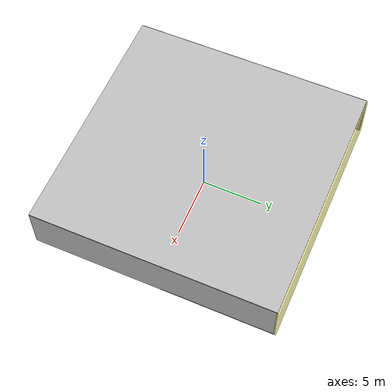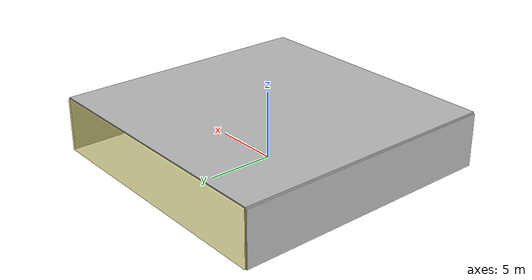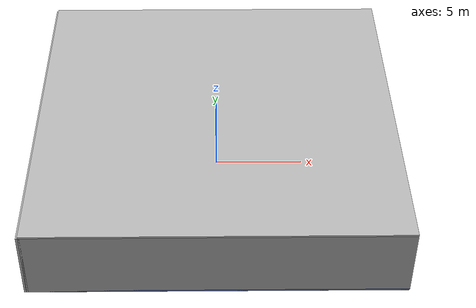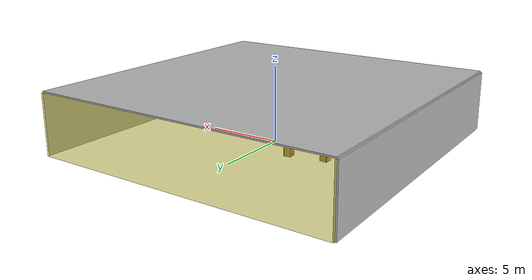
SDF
<sdf version="1.4">
 <world name="default">
  <physics type="ode">
   <max_step_size>0.001</max_step_size>
   <real_time_factor>1</real_time_factor>
   <real_time_update_rate>1000</real_time_update_rate>
   <gravity>0 0 -9.8</gravity>
  </physics>
  <scene><ambient>0.4 0.4 0.4 1</ambient><background>0.7 0.7 0.7 1</background><shadows>1</shadows></scene>
  <model name="Surrounding">
   <static>1</static>
   <link name="Ceiling">
    <collision name="Ceiling_Collision"><geometry><box><size>20 20 0.1</size></box></geometry></collision>
    <visual name="Ceiling_Visual">
     <geometry><box><size>20 20 0.1</size></box></geometry>
     <material>
      <script><uri>file://media/materials/scripts/gazebo.material</uri><name>Gazebo/Pioneer2Body</name></script>
     </material>
    </visual>
    <pose>0 0 4.05 0 0 0</pose>
   </link>
   <link name="Wall_South">
    <collision name="Wall_South_Collision">
     <geometry><box><size>20 0 4</size></box></geometry>
     <pose>0 0 2 0 -0 0</pose>
    </collision>
    <visual name="Wall_South_Visual">
     <pose>0 0 2 0 -0 0</pose>
     <geometry><box><size>20 0 4</size></box></geometry>
     <material>
      <script><uri>file://media/materials/scripts/gazebo.material</uri><name>Gazebo/Grey</name></script>
     </material>
    </visual>
    <velocity_decay><linear>0</linear><angular>0</angular></velocity_decay>
    <pose>0 -10 0 0 -0 0</pose>
   </link>
   <link name="Wall_East">
    <collision name="Wall_21_Collision">
     <geometry><box><size>20 0 4</size></box></geometry>
     <pose>0 0 2 0 -0 0</pose>
    </collision>
    <visual name="Wall_21_Visual">
     <pose>0 0 2 0 -0 0</pose>
     <geometry><box><size>20 0 4</size></box></geometry>
     <material>
      <script><uri>file://media/materials/scripts/gazebo.material</uri><name>Gazebo/LightOn</name></script>
     </material>
    </visual>
    <velocity_decay><linear>0</linear><angular>0</angular></velocity_decay>
    <pose>10 0 0 0 -0 1.5708</pose>
   </link>
   <link name="Wall_North">
    <collision name="Wall_22_Collision">
     <geometry><box><size>20 0.2 4</size></box></geometry>
     <pose>0 0 2 0 -0 0</pose>
    </collision>
    <visual name="Wall_22_Visual">
     <pose>0 0 2 0 -0 0</pose>
     <geometry><box><size>20 0.2 4</size></box></geometry>
     <material>
      <script>
       <uri>file://media/materials/scripts/gazebo.material</uri>
       <name>Gazebo/YellowTransparent</name>
      </script>
     </material>
    </visual>
    <velocity_decay><linear>0</linear><angular>0</angular></velocity_decay>
    <pose>0 10 0 0 -0 0</pose>
   </link>
   <link name="Wall_West">
    <collision name="Wall_23_Collision">
     <geometry><box><size>20 0.2 4</size></box></geometry>
     <pose>0 0 2 0 -0 0</pose>
    </collision>
    <visual name="Wall_23_Visual">
     <pose>0 0 2 0 -0 0</pose>
     <geometry><box><size>20 0.2 4</size></box></geometry>
     <material>
      <script><uri>file://media/materials/scripts/gazebo.material</uri><name>Gazebo/Pioneer2Body</name></script>
     </material>
    </visual>
    <velocity_decay><linear>0</linear><angular>0</angular></velocity_decay>
    <pose>-10 0 0 0 0 -1.5708</pose>
   </link>
   <link name="Ground_link">
    <collision name="collision">
     <pose>0 0 .05 0 -0 0</pose>
     <geometry><box><size>20 20 0.1</size></box></geometry>
    </collision>
    <visual name="visual">
     <pose>0 0 .05 0 -0 0</pose>
     <geometry><box><size>20 20 0.1</size></box></geometry>
     <material>
      <script><uri>file://media/materials/scripts/gazebo.material</uri><name>Gazebo/BlueTransparent</name></script>
     </material>
    </visual>
   </link>
   <static>1</static>
  </model>
  <spherical_coordinates>
   <surface_model>EARTH_WGS84</surface_model>
   <latitude_deg>0</latitude_deg>
   <longitude_deg>0</longitude_deg>
   <elevation>0</elevation>
   <heading_deg>0</heading_deg>
  </spherical_coordinates>
  <light name="lightball_0" type="diffuse">
   <diffuse>0.8 0.8 0.8 1</diffuse>
   <specular>0.2 0.2 0.2 1</specular>
   <attenuation>
    <range>100</range>
    <constant>0.7</constant>
    <linear>0.01</linear>
    <quadratic>0.001</quadratic>
   </attenuation>
   <direction>-0.5 0.1 -0.9</direction>
   <pose>1.08128875401 8.57248037835 0.957938160902 0 0 0</pose>
  </light>
  <light name="lightball_1" type="diffuse">
   <diffuse>0.8 0.8 0.8 1</diffuse>
   <specular>0.2 0.2 0.2 1</specular>
   <attenuation>
    <range>100</range>
    <constant>0.7</constant>
    <linear>0.01</linear>
    <quadratic>0.001</quadratic>
   </attenuation>
   <direction>-0.5 0.1 -0.9</direction>
   <pose>3.8211941482 -8.31886980417 3.05798424065 0 0 0</pose>
  </light>
  <light name="lightball_2" type="diffuse">
   <diffuse>0.8 0.8 0.8 1</diffuse>
   <specular>0.2 0.2 0.2 1</specular>
   <attenuation>
    <range>100</range>
    <constant>0.7</constant>
    <linear>0.01</linear>
    <quadratic>0.001</quadratic>
   </attenuation>
   <direction>-0.5 0.1 -0.9</direction>
   <pose>8.91321082018 -9.42958970894 1.72452248805 0 0 0</pose>
  </light>
  <light name="lightball_3" type="diffuse">
   <diffuse>0.8 0.8 0.8 1</diffuse>
   <specular>0.2 0.2 0.2 1</specular>
   <attenuation>
    <range>100</range>
    <constant>0.7</constant>
    <linear>0.01</linear>
    <quadratic>0.001</quadratic>
   </attenuation>
   <direction>-0.5 0.1 -0.9</direction>
   <pose>-1.84999562644 2.82430461101 2.68433675767 0 0 0</pose>
  </light>
  <light name="lightball_4" type="diffuse">
   <diffuse>0.8 0.8 0.8 1</diffuse>
   <specular>0.2 0.2 0.2 1</specular>
   <attenuation>
    <range>100</range>
    <constant>0.7</constant>
    <linear>0.01</linear>
    <quadratic>0.001</quadratic>
   </attenuation>
   <direction>-0.5 0.1 -0.9</direction>
   <pose>-5.86394518326 -1.24870204146 3.25054529358 0 0 0</pose>
  </light>
  <light name="lightball_5" type="diffuse">
   <diffuse>0.8 0.8 0.8 1</diffuse>
   <specular>0.2 0.2 0.2 1</specular>
   <attenuation>
    <range>100</range>
    <constant>0.7</constant>
    <linear>0.01</linear>
    <quadratic>0.001</quadratic>
   </attenuation>
   <direction>-0.5 0.1 -0.9</direction>
   <pose>5.78350907488 -7.6605157807 1.77249279851 0 0 0</pose>
  </light>
  <light name="lightball_6" type="diffuse">
   <diffuse>0.8 0.8 0.8 1</diffuse>
   <specular>0.2 0.2 0.2 1</specular>
   <attenuation>
    <range>100</range>
    <constant>0.7</constant>
    <linear>0.01</linear>
    <quadratic>0.001</quadratic>
   </attenuation>
   <direction>-0.5 0.1 -0.9</direction>
   <pose>-6.7294972971 -3.19546571656 2.34123582806 0 0 0</pose>
  </light>
  <light name="lightball_7" type="diffuse">
   <diffuse>0.8 0.8 0.8 1</diffuse>
   <specular>0.2 0.2 0.2 1</specular>
   <attenuation>
    <range>100</range>
    <constant>0.7</constant>
    <linear>0.01</linear>
    <quadratic>0.001</quadratic>
   </attenuation>
   <direction>-0.5 0.1 -0.9</direction>
   <pose>2.59751008608 -1.95692752815 3.55081930674 0 0 0</pose>
  </light>
  <light name="lightball_8" type="diffuse">
   <diffuse>0.8 0.8 0.8 1</diffuse>
   <specular>0.2 0.2 0.2 1</specular>
   <attenuation>
    <range>100</range>
    <constant>0.7</constant>
    <linear>0.01</linear>
    <quadratic>0.001</quadratic>
   </attenuation>
   <direction>-0.5 0.1 -0.9</direction>
   <pose>5.52785831787 4.05430687123 1.12795063315 0 0 0</pose>
  </light>
  <light name="lightball_9" type="diffuse">
   <diffuse>0.8 0.8 0.8 1</diffuse>
   <specular>0.2 0.2 0.2 1</specular>
   <attenuation>
    <range>100</range>
    <constant>0.7</constant>
    <linear>0.01</linear>
    <quadratic>0.001</quadratic>
   </attenuation>
   <direction>-0.5 0.1 -0.9</direction>
   <pose>-0.889788186618 -5.19362787108 1.43242539889 0 0 0</pose>
  </light>
  <include><uri>model://cabinet</uri><pose>-4.46359509269 1.21589489076 0 0 0 3.06123628119</pose></include>
  <include><uri>model://cabinet</uri><pose>-1.37613362634 -8.15926993325 0 0 0 0.780120011391</pose></include>
  <include><uri>model://cabinet</uri><pose>-2.17703937089 1.6995739508 0 0 0 0.115309139446</pose></include>
  <include>
   <uri>model://construction_cone</uri>
   <pose>2.2587294929 -7.2052769603 0 0 0 1.31380201704</pose>
  </include>
  <include>
   <uri>model://robocup_3Dsim_goal</uri>
   <pose>4.04998984263 -1.72507936536 0 0 0 2.06647855857</pose>
  </include>
 </world>
</sdf>

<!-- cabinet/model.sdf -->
<sdf version="1.5">
  <model name="cabinet">
    <static>true</static>
    <link name="cabinet_bottom_plate">
      <inertial>
        <pose>0 0 -1 0 0 0</pose>
        <inertia>
          <ixx>2.050000</ixx>
          <ixy>0</ixy>
          <ixz>0</ixz>
          <iyy>2.050000</iyy>
          <iyz>0</iyz>
          <izz>2.050000</izz>
        </inertia>
        <mass>25.000000</mass>
      </inertial>
      <collision name="cabinet_bottom_plate_geom">
        <pose>0 0 0.010000 0 0 0</pose>
        <geometry>
          <box>
            <size>0.450000 0.450000 0.020000</size>
          </box>
        </geometry>
      </collision>
      <visual name="cabinet_bottom_plate_geom_visual">
        <pose>0 0 0.010000 0 0 0</pose>
        <geometry>
          <box>
            <size>0.450000 0.450000 0.020000</size>
          </box>
        </geometry>
        <material>
          <script>
            <uri>model://media/materials/scripts/gazebo.material</uri>
            <name>Gazebo/Wood</name>
          </script>
        </material>
      </visual>
      <collision name="cabinet_bottom_plate_geom_cabinet_back_plate">
        <pose>0.235000 0 0.510000 0 0 0</pose>
        <geometry>
          <box>
            <size>0.020000 0.450000 1.020000</size>
          </box>
        </geometry>
      </collision>
      <visual name="cabinet_bottom_plate_geom_cabinet_back_plate_visual">
        <pose>0.235000 0 0.510000 0 0 0</pose>
        <geometry>
          <box>
            <size>0.020000 0.450000 1.020000</size>
          </box>
        </geometry>
        <material>
          <script>
            <uri>model://media/materials/scripts/gazebo.material</uri>
            <name>Gazebo/Wood</name>
          </script>
        </material>
      </visual>
      <collision name="cabinet_bottom_plate_geom_cabinet_left_plate">
        <pose>0 0.235000 0.510000 0 0 0</pose>
        <geometry>
          <box>
            <size>0.450000 0.020000 1.020000</size>
          </box>
        </geometry>
      </collision>
      <visual name="cabinet_bottom_plate_geom_cabinet_left_plate_visual">
        <pose>0 0.235000 0.510000 0 0 0</pose>
        <geometry>
          <box>
            <size>0.450000 0.020000 1.020000</size>
          </box>
        </geometry>
        <material>
          <script>
            <uri>model://media/materials/scripts/gazebo.material</uri>
            <name>Gazebo/Wood</name>
          </script>
        </material>
      </visual>
      <collision name="cabinet_bottom_plate_geom_cabinet_middle_plate">
        <pose>0 0 0.510000 0 0 0</pose>
        <geometry>
          <box>
            <size>0.450000 0.450000 0.020000</size>
          </box>
        </geometry>
      </collision>
      <visual name="cabinet_bottom_plate_geom_cabinet_middle_plate_visual">
        <pose>0 0 0.510000 0 0 0</pose>
        <geometry>
          <box>
            <size>0.450000 0.450000 0.020000</size>
          </box>
        </geometry>
        <material>
          <script>
            <uri>model://media/materials/scripts/gazebo.material</uri>
            <name>Gazebo/Wood</name>
          </script>
        </material>
      </visual>
      <collision name="cabinet_bottom_plate_geom_cabinet_right_plate">
        <pose>0 -0.235000 0.510000 0 0 0</pose>
        <geometry>
          <box>
            <size>0.450000 0.020000 1.020000</size>
          </box>
        </geometry>
      </collision>
      <visual name="cabinet_bottom_plate_geom_cabinet_right_plate_visual">
        <pose>0 -0.235000 0.510000 0 0 0</pose>
        <geometry>
          <box>
            <size>0.450000 0.020000 1.020000</size>
          </box>
        </geometry>
        <material>
          <script>
            <uri>model://media/materials/scripts/gazebo.material</uri>
            <name>Gazebo/Wood</name>
          </script>
        </material>
      </visual>
      <collision name="cabinet_bottom_plate_geom_cabinet_top_plate">
        <pose>0 0 1.010000 0 0 0</pose>
        <geometry>
          <box>
            <size>0.450000 0.450000 0.020000</size>
          </box>
        </geometry>
      </collision>
      <visual name="cabinet_bottom_plate_geom_cabinet_top_plate_visual">
        <pose>0 0 1.010000 0 0 0</pose>
        <geometry>
          <box>
            <size>0.450000 0.450000 0.020000</size>
          </box>
        </geometry>
        <material>
          <script>
            <uri>model://media/materials/scripts/gazebo.material</uri>
            <name>Gazebo/Wood</name>
          </script>
        </material>
      </visual>
    </link>
  </model>
</sdf>

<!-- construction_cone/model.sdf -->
<sdf version="1.5">
  <model name="Construction Cone">
    <link name="link">
      <collision name="collision">
        <geometry>
          <mesh>
            <scale>10 10 10</scale>
            <uri>file://isr-testbed/construction_cone/meshes/construction_cone.dae</uri>
          </mesh>
        </geometry>
      </collision>
      <visual name="visual">
        <geometry>
          <mesh>
            <scale>10 10 10</scale>
            <uri>file://isr-testbed/construction_cone/meshes/construction_cone.dae</uri>
          </mesh>
        </geometry>
      </visual>
    </link>
  </model>
</sdf>

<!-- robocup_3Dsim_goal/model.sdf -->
<sdf version="1.5">
  <model name="robocup_3d_goal">
    <static>true</static>
    <link name="left_post">
      <pose>0 1.05 0.45 0 0 0</pose>
      <collision name="collision">
        <geometry>
          <cylinder>
            <radius>0.05</radius>
            <length>0.9</length>
          </cylinder>
        </geometry>
      </collision>
      <visual name="visual">
        <geometry>
          <cylinder>
            <radius>0.05</radius>
            <length>0.9</length>
          </cylinder>
        </geometry>
        <material>
          <script>
            <uri>file://media/materials/scripts/gazebo.material</uri>
            <name>Gazebo/ZincYellow</name>
          </script>
        </material>
      </visual>
    </link>
    <link name="left_support_horiz_lower">
      <pose>0.30 1.05 0.01 0 0 0</pose>
      <collision name="collision">
        <geometry>
          <box>
            <size>0.50 0.02 0.02</size>
          </box>
        </geometry>
      </collision>
      <visual name="visual">
        <geometry>
          <box>
            <size>0.50 0.02 0.02</size>
          </box>
        </geometry>
        <material>
          <script>
            <uri>file://media/materials/scripts/gazebo.material</uri>
            <name>Gazebo/White</name>
          </script>
        </material>
      </visual>
    </link>
    <link name="left_support_horiz_upper">
      <pose>0.30 1.05 0.79 0 0 0</pose>
      <collision name="collision">
        <geometry>
          <box>
            <size>0.50 0.02 0.02</size>
          </box>
        </geometry>
      </collision>
      <visual name="visual">
        <geometry>
          <box>
            <size>0.50 0.02 0.02</size>
          </box>
        </geometry>
        <material>
          <script>
            <uri>file://media/materials/scripts/gazebo.material</uri>
            <name>Gazebo/White</name>
          </script>
        </material>
      </visual>
    </link>
    <link name="left_support_vertical">
      <pose>0.56 1.05 0.4 0 1.5708 0</pose>
      <collision name="collision">
        <geometry>
          <box>
            <size>0.80 0.02 0.02</size>
          </box>
        </geometry>
      </collision>
      <visual name="visual">
        <geometry>
          <box>
            <size>0.80 0.02 0.02</size>
          </box>
        </geometry>
        <material>
          <script>
            <uri>file://media/materials/scripts/gazebo.material</uri>
            <name>Gazebo/White</name>
          </script>
        </material>
      </visual>
    </link>
    <link name="right_support_horiz_lower">
      <pose>0.30 -1.05 0.01 0 0 0</pose>
      <collision name="collision">
        <geometry>
          <box>
            <size>0.50 0.02 0.02</size>
          </box>
        </geometry>
      </collision>
      <visual name="visual">
        <geometry>
          <box>
            <size>0.50 0.02 0.02</size>
          </box>
        </geometry>
        <material>
          <script>
            <uri>file://media/materials/scripts/gazebo.material</uri>
            <name>Gazebo/White</name>
          </script>
        </material>
      </visual>
    </link>
    <link name="right_support_horiz_upper">
      <pose>0.30 -1.05 0.79 0 0 0</pose>
      <collision name="collision">
        <geometry>
          <box>
            <size>0.50 0.02 0.02</size>
          </box>
        </geometry>
      </collision>
      <visual name="visual">
        <geometry>
          <box>
            <size>0.50 0.02 0.02</size>
          </box>
        </geometry>
        <material>
          <script>
            <uri>file://media/materials/scripts/gazebo.material</uri>
            <name>Gazebo/White</name>
          </script>
        </material>
      </visual>
    </link>
    <link name="right_support_vertical">
      <pose>0.56 -1.05 0.4 0 1.5708 0</pose>
      <collision name="collision">
        <geometry>
          <box>
            <size>0.80 0.02 0.02</size>
          </box>
        </geometry>
      </collision>
      <visual name="visual">
        <geometry>
          <box>
            <size>0.80 0.02 0.02</size>
          </box>
        </geometry>
        <material>
          <script>
            <uri>file://media/materials/scripts/gazebo.material</uri>
            <name>Gazebo/White</name>
          </script>
        </material>
      </visual>
    </link>
    <link name="center_support_horiz_lower">
      <pose>0.56 0 0.01 0 1.5708 0</pose>
      <collision name="collision">
        <geometry>
          <box>
            <size>0.02 2.08 0.02</size>
          </box>
        </geometry>
      </collision>
      <visual name="visual">
        <geometry>
          <box>
            <size>0.02 2.08 0.02</size>
          </box>
        </geometry>
        <material>
          <script>
            <uri>file://media/materials/scripts/gazebo.material</uri>
            <name>Gazebo/White</name>
          </script>
        </material>
      </visual>
    </link>
    <link name="center_support_horiz_upper">
      <pose>0.56 0 0.79 0 1.5708 0</pose>
      <collision name="collision">
        <geometry>
          <box>
            <size>0.02 2.08 0.02</size>
          </box>
        </geometry>
      </collision>
      <visual name="visual">
        <geometry>
          <box>
            <size>0.02 2.08 0.02</size>
          </box>
        </geometry>
        <material>
          <script>
            <uri>file://media/materials/scripts/gazebo.material</uri>
            <name>Gazebo/White</name>
          </script>
        </material>
      </visual>
    </link>
    <link name="right_post">
      <pose>0 -1.05 0.45 0 0 0</pose>
      <collision name="collision">
        <geometry>
          <cylinder>
            <radius>0.05</radius>
            <length>0.9</length>
          </cylinder>
        </geometry>
      </collision>
      <visual name="visual">
        <geometry>
          <cylinder>
            <radius>0.05</radius>
            <length>0.9</length>
          </cylinder>
        </geometry>
        <material>
          <script>
            <uri>file://media/materials/scripts/gazebo.material</uri>
            <name>Gazebo/ZincYellow</name>
          </script>
        </material>
      </visual>
    </link>
    <link name="crossbar">
      <pose>0 0 0.85 1.57 1.57 0</pose>
      <collision name="collision">
        <geometry>
          <cylinder>
            <radius>0.05</radius>
            <length>2.0</length>
          </cylinder>
        </geometry>
      </collision>
      <visual name="visual">
        <geometry>
          <cylinder>
            <radius>0.05</radius>
            <length>2.0</length>
          </cylinder>
        </geometry>
        <material>
          <script>
            <uri>file://media/materials/scripts/gazebo.material</uri>
            <name>Gazebo/ZincYellow</name>
          </script>
        </material>
      </visual>
    </link>
    <link name="center_net">
      <pose>0.56 0 0.40 0 0 0</pose>
      <collision name="collision">
        <geometry>
          <box>
            <size>0.01 2.1 0.80</size>
          </box>
        </geometry>
      </collision>
      <visual name="visual">
        <geometry>
          <box>
            <size>0.01 2.1 0.80</size>
          </box>
        </geometry>
        <material>
          <script>
            <uri>model://../model_source/models/robocup09_spl_field/materials/scripts/</uri>
            <uri>model://../model_source/models/robocup09_spl_field/materials/textures/</uri>
            <name>RoboCup/Net</name>
          </script>
        </material>
      </visual>
    </link>
    <link name="left_net">
      <pose>0.30 1.05 0.40 0 0 0</pose>
      <collision name="collision">
        <geometry>
          <box>
            <size>0.50 0.01 0.76</size>
          </box>
        </geometry>
      </collision>
      <visual name="visual">
        <geometry>
          <box>
            <size>0.50 0.01 0.76</size>
          </box>
        </geometry>
        <material>
          <script>
            <uri>model://../model_source/models/robocup09_spl_field/materials/scripts/</uri>
            <uri>model://../model_source/models/robocup09_spl_field/materials/textures/</uri>
            <name>RoboCup/Net</name>
          </script>
        </material>
      </visual>
    </link>
    <link name="right_net">
      <pose>0.30 -1.05 0.40 0 0 0</pose>
      <collision name="collision">
        <geometry>
          <box>
            <size>0.50 0.01 0.76</size>
          </box>
        </geometry>
      </collision>
      <visual name="visual">
        <geometry>
          <box>
            <size>0.50 0.01 0.76</size>
          </box>
        </geometry>
        <material>
          <script>
            <uri>model://../model_source/models/robocup09_spl_field/materials/scripts/</uri>
            <uri>model://../model_source/models/robocup09_spl_field/materials/textures/</uri>
            <name>RoboCup/Net</name>
          </script>
        </material>
      </visual>
    </link>
  </model>
</sdf>
